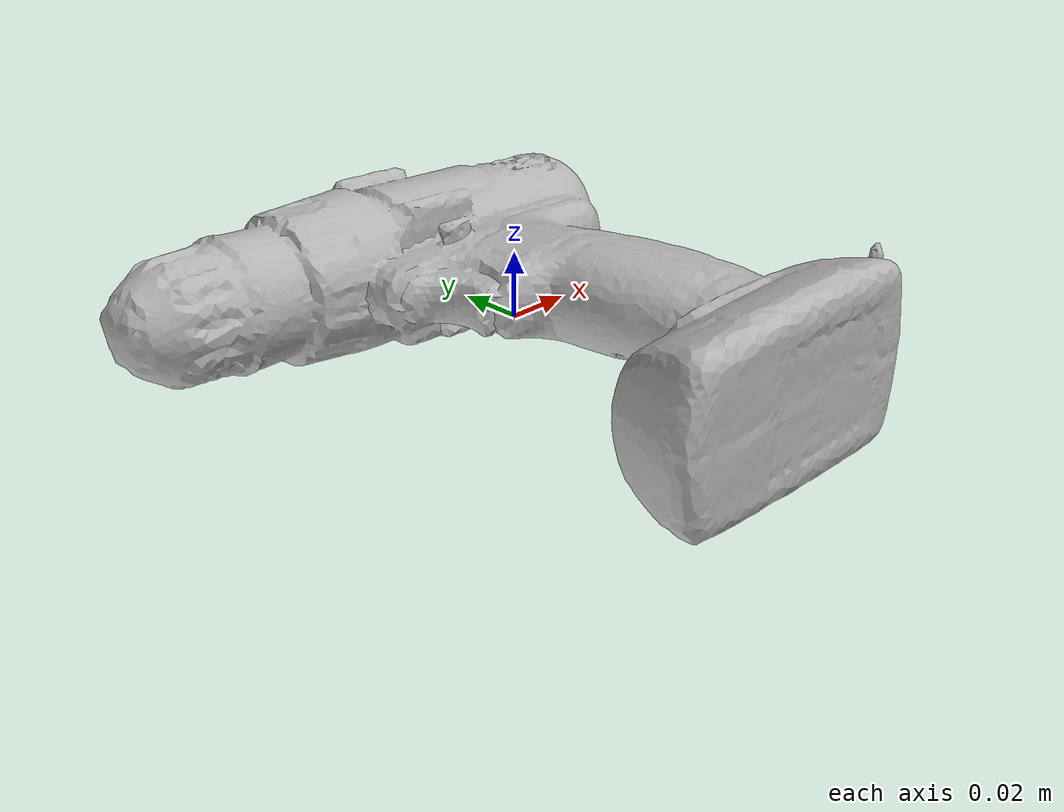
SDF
<?xml version="1.0" ?>
<sdf version="1.7">
<!--
This SDF file was automatically generated using a template modified
and authored by Jinjian Li. The moment of interia is not supposed to be changed.
-->
    <model name="obj_000015">
      <pose>0.0 0.0 0.0 0.0 0.0 0.0</pose>
      <link name="link">
        <inertial>
          <inertia>
           <ixx>0.0034694557045595576</ixx>
           <ixy>0.00035828225399127167</ixy>
           <ixz>2.751275800497535e-05</ixz>
           <iyy>0.001414437018217899</iyy>
           <iyz>7.019725029295472e-05</iyz>
           <izz>0.00464772644194235</izz>
          </inertia>
          <mass>0.8700591901445955</mass>
        </inertial>
        <collision name="collision">
          <geometry>
            <mesh>
             <uri>obj_000015.obj</uri>
             <scale>1 1 1</scale>
            </mesh>
          </geometry>
        </collision>

        <visual name="visual">
          <geometry>
            <mesh>
             <uri>obj_000015.obj</uri>
             <scale>1 1 1</scale>
            </mesh>
          </geometry>
        </visual>
      </link>
    </model>
</sdf>
